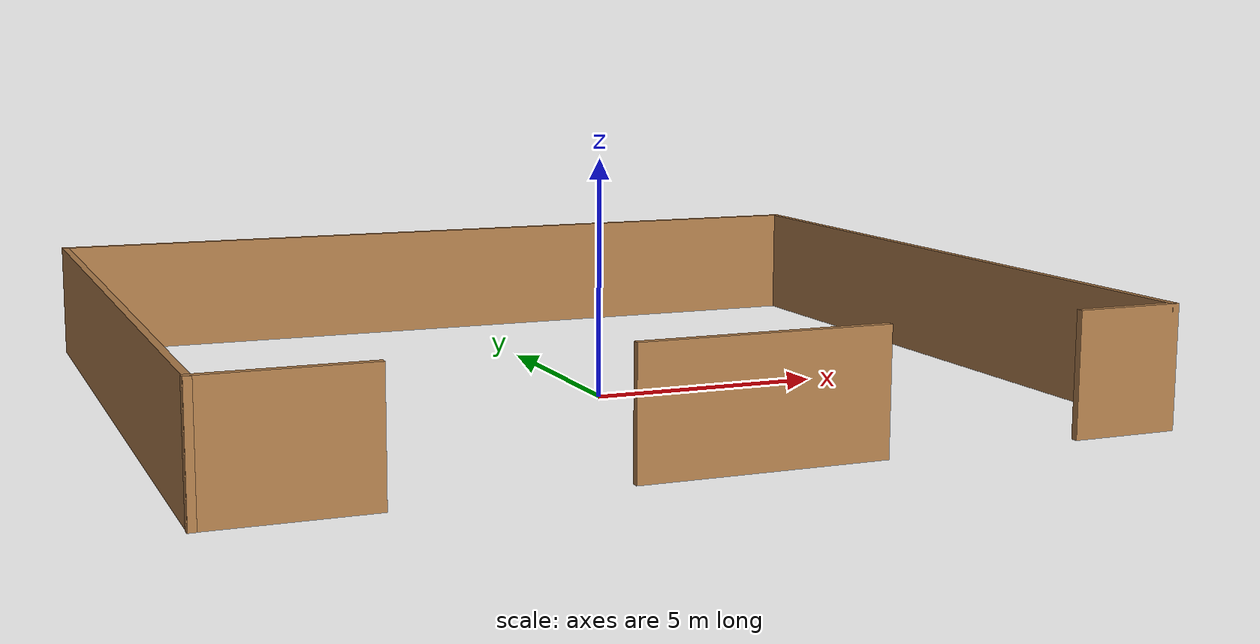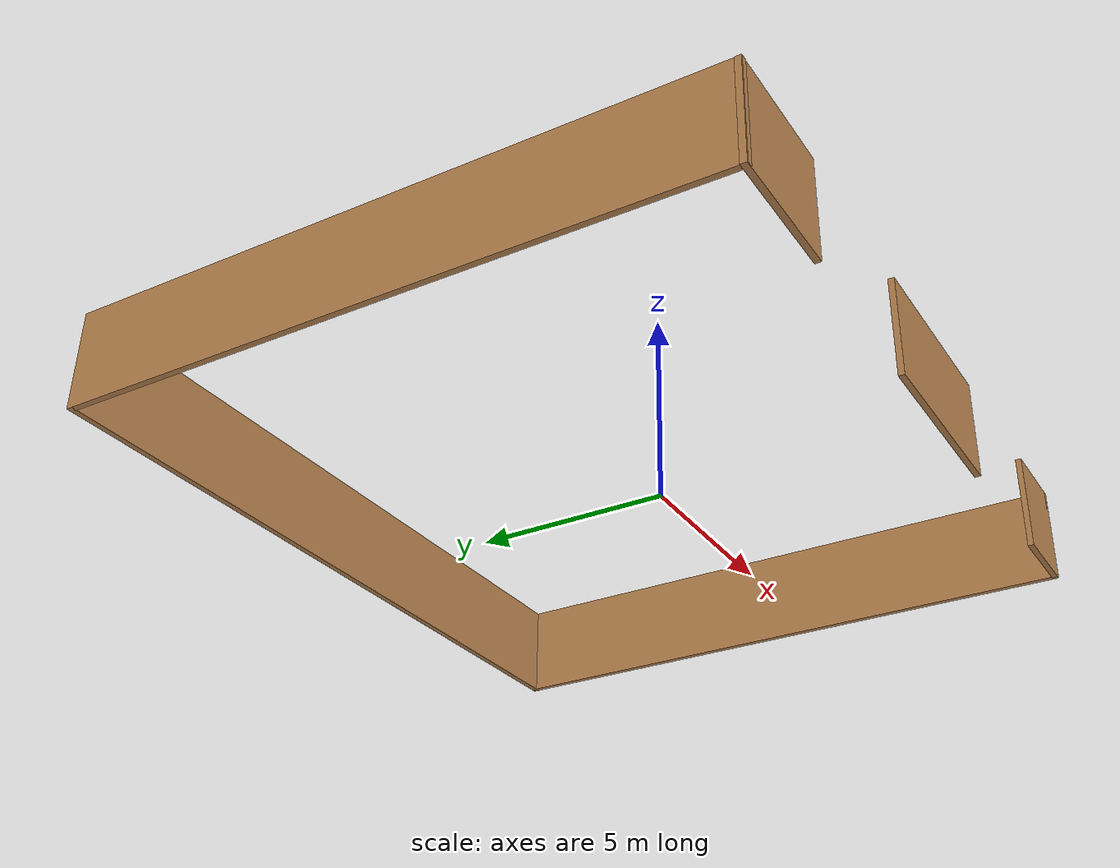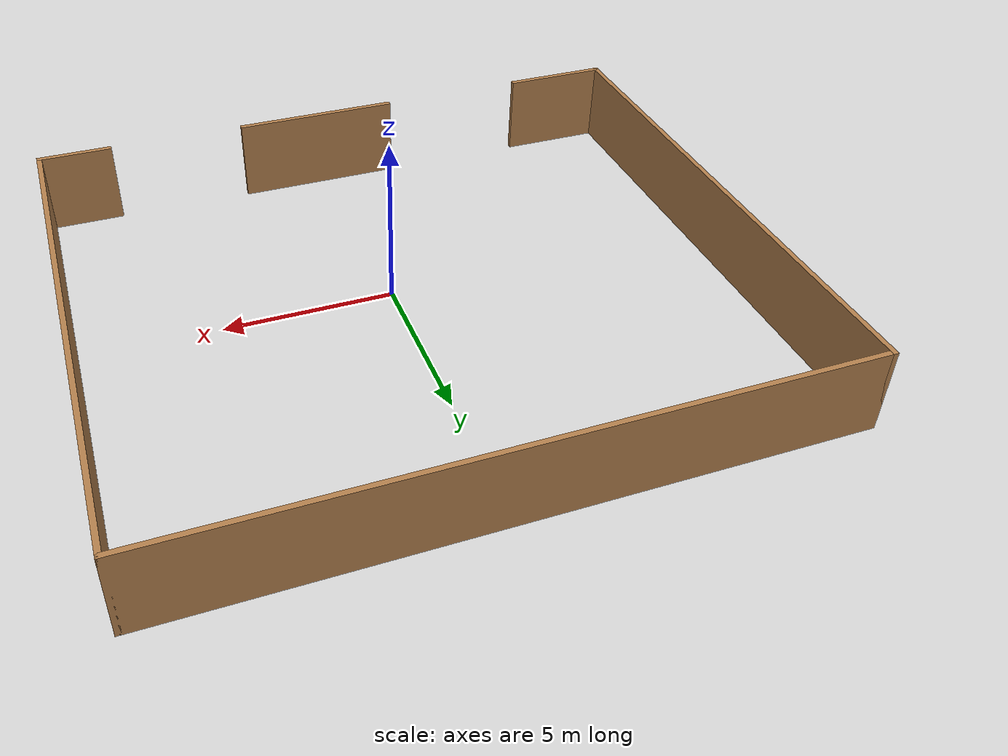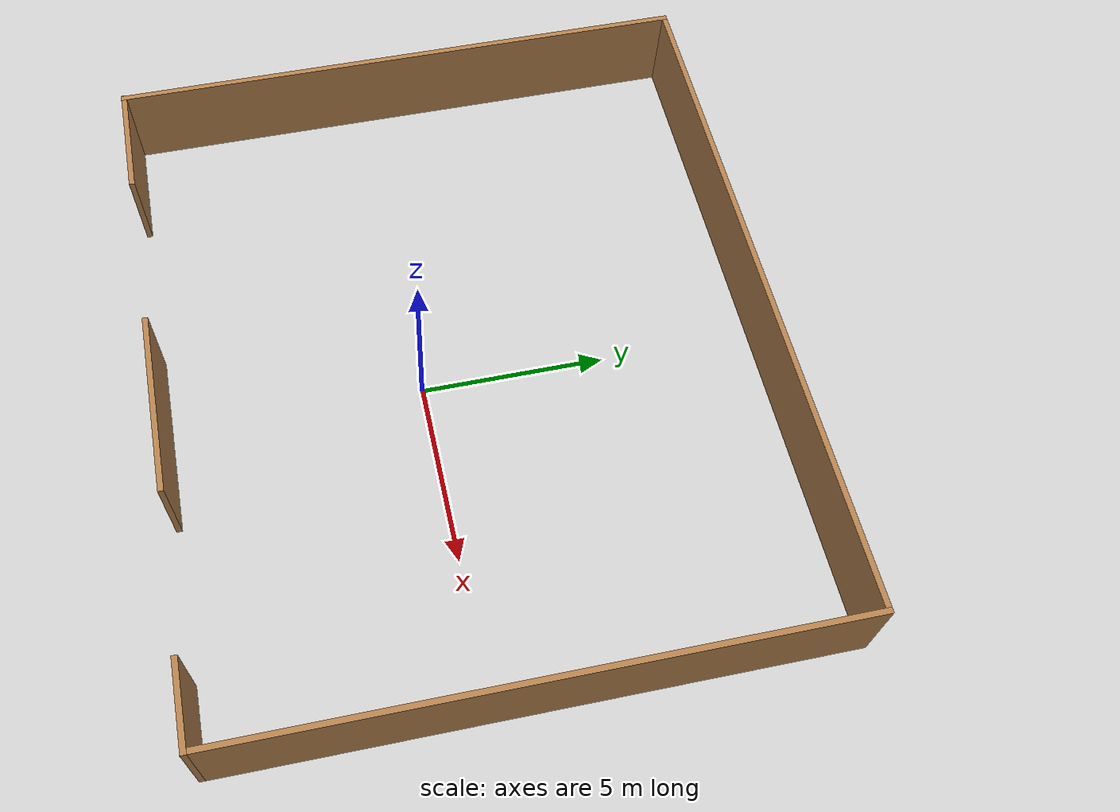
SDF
<?xml version='1.0'?>
<sdf version='1.7'>
  <model name='mart_walls'>
    <pose>-0.362233 1.16692 0 0 -0 0</pose>
    <link name='Wall_10'>
      <collision name='Wall_10_Collision'>
        <geometry>
          <box>
            <size>5 0.15 2.5</size>
          </box>
        </geometry>
        <pose>0 0 1.25 0 -0 0</pose>
      </collision>
      <visual name='Wall_10_Visual'>
        <pose>0 0 1.25 0 -0 0</pose>
        <geometry>
          <box>
            <size>5 0.15 2.5</size>
          </box>
        </geometry>
        <material>
          <script>
            <uri>file://media/materials/scripts/gazebo.material</uri>
            <name>Gazebo/Wood</name>
          </script>
          <ambient>1 1 1 1</ambient>
        </material>
        <meta>
          <layer>0</layer>
        </meta>
      </visual>
      <pose>0.674648 -8.01815 0 0 -0 0</pose>
    </link>
    <link name='Wall_3'>
      <collision name='Wall_3_Collision'>
        <geometry>
          <box>
            <size>16.25 0.15 2.5</size>
          </box>
        </geometry>
        <pose>0 0 1.25 0 -0 0</pose>
      </collision>
      <visual name='Wall_3_Visual'>
        <pose>0 0 1.25 0 -0 0</pose>
        <geometry>
          <box>
            <size>16.25 0.15 2.5</size>
          </box>
        </geometry>
        <material>
          <script>
            <uri>file://media/materials/scripts/gazebo.material</uri>
            <name>Gazebo/Wood</name>
          </script>
          <ambient>1 1 1 1</ambient>
        </material>
        <meta>
          <layer>0</layer>
        </meta>
      </visual>
      <pose>-9.41858 -0 0 0 -0 1.5708</pose>
    </link>
    <link name='Wall_4'>
      <collision name='Wall_4_Collision'>
        <geometry>
          <box>
            <size>19 0.15 2.5</size>
          </box>
        </geometry>
        <pose>0 0 1.25 0 -0 0</pose>
      </collision>
      <visual name='Wall_4_Visual'>
        <pose>0 0 1.25 0 -0 0</pose>
        <geometry>
          <box>
            <size>19 0.15 2.5</size>
          </box>
        </geometry>
        <material>
          <script>
            <uri>file://media/materials/scripts/gazebo.material</uri>
            <name>Gazebo/Wood</name>
          </script>
          <ambient>1 1 1 1</ambient>
        </material>
        <meta>
          <layer>0</layer>
        </meta>
      </visual>
      <pose>0.006422 8.05 0 0 -0 0</pose>
    </link>
    <link name='Wall_5'>
      <collision name='Wall_5_Collision'>
        <geometry>
          <box>
            <size>16.25 0.15 2.5</size>
          </box>
        </geometry>
        <pose>0 0 1.25 0 -0 0</pose>
      </collision>
      <visual name='Wall_5_Visual'>
        <pose>0 0 1.25 0 -0 0</pose>
        <geometry>
          <box>
            <size>16.25 0.15 2.5</size>
          </box>
        </geometry>
        <material>
          <script>
            <uri>file://media/materials/scripts/gazebo.material</uri>
            <name>Gazebo/Wood</name>
          </script>
          <ambient>1 1 1 1</ambient>
        </material>
        <meta>
          <layer>0</layer>
        </meta>
      </visual>
      <pose>9.43142 -0 0 0 -0 -1.5708</pose>
    </link>
    <link name='Wall_6'>
      <collision name='Wall_6_Collision'>
        <geometry>
          <box>
            <size>2.25 0.15 2.5</size>
          </box>
        </geometry>
        <pose>0 0 1.25 0 -0 0</pose>
      </collision>
      <visual name='Wall_6_Visual'>
        <pose>0 0 1.25 0 -0 0</pose>
        <geometry>
          <box>
            <size>2.25 0.15 2.5</size>
          </box>
        </geometry>
        <material>
          <script>
            <uri>file://media/materials/scripts/gazebo.material</uri>
            <name>Gazebo/Wood</name>
          </script>
          <ambient>1 1 1 1</ambient>
        </material>
        <meta>
          <layer>0</layer>
        </meta>
      </visual>
      <pose>8.38142 -8.05 0 0 -0 3.14159</pose>
    </link>
    <link name='Wall_8'>
      <collision name='Wall_8_Collision'>
        <geometry>
          <box>
            <size>3.25 0.15 2.5</size>
          </box>
        </geometry>
        <pose>0 0 1.25 0 -0 0</pose>
      </collision>
      <visual name='Wall_8_Visual'>
        <pose>0 0 1.25 0 -0 0</pose>
        <geometry>
          <box>
            <size>3.25 0.15 2.5</size>
          </box>
        </geometry>
        <material>
          <script>
            <uri>file://media/materials/scripts/gazebo.material</uri>
            <name>Gazebo/Wood</name>
          </script>
          <ambient>1 1 1 1</ambient>
        </material>
        <meta>
          <layer>0</layer>
        </meta>
      </visual>
      <pose>-7.88142 -8.03854 0 0 -0 0</pose>
    </link>
    <static>1</static>
  </model>
</sdf>
